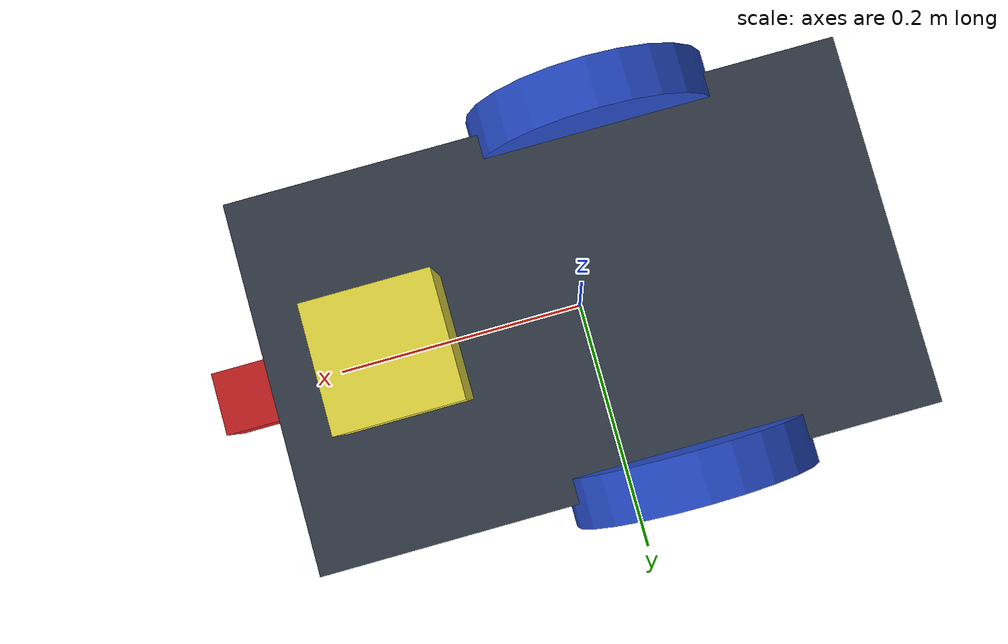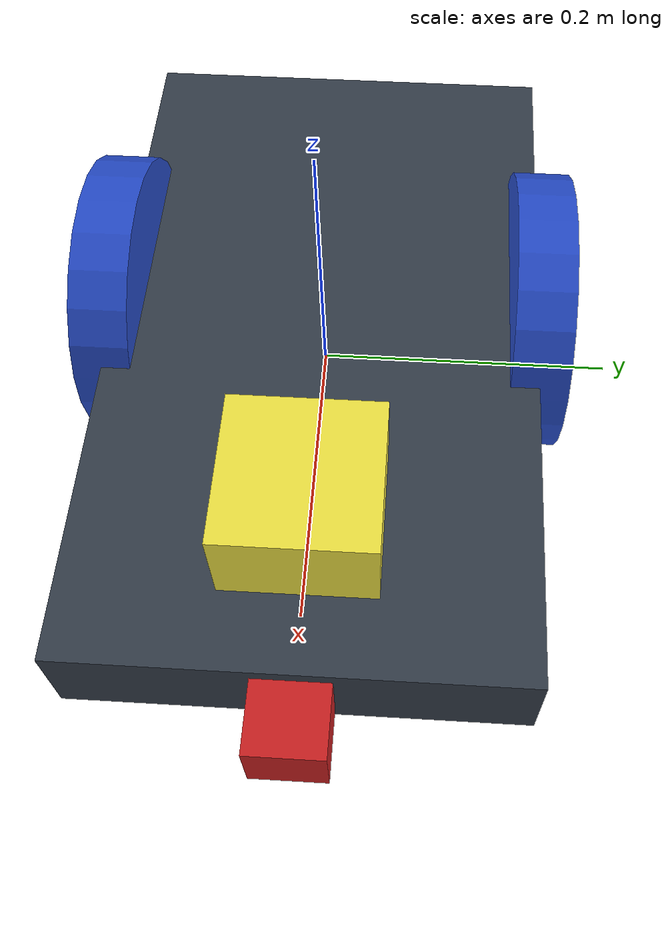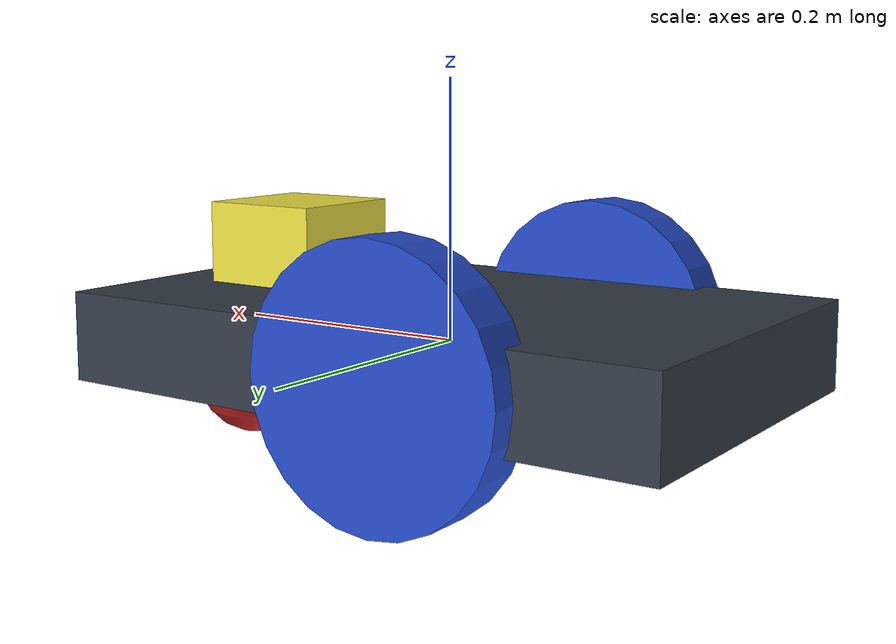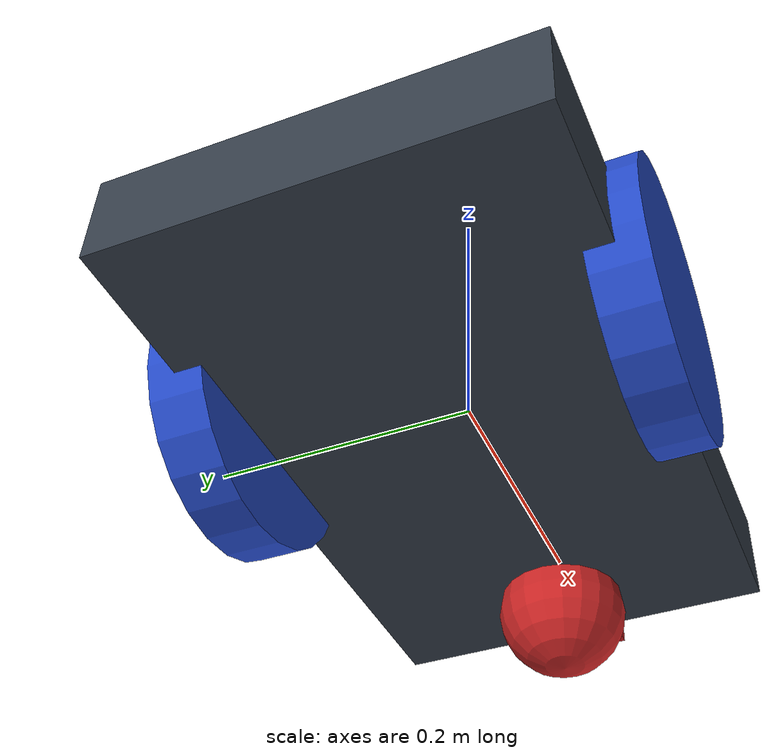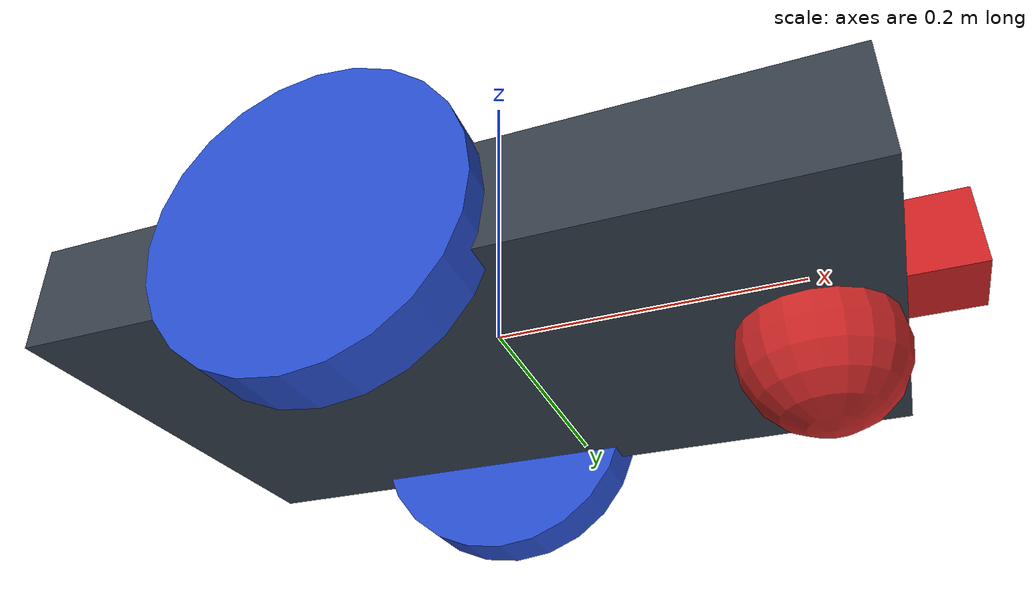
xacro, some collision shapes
<?xml version="1.0"?>
<robot name="spcbot" xmlns:xacro="http://www.ros.org/wiki/xacro">
  <xacro:property name="camera_link" value="0.05" />
  <material name="black">
    <color rgba="0.0 0.0 0.0 1.0"/>
  </material>
  <material name="blue">
    <color rgba="0.203125 0.23828125 0.28515625 1.0"/>
  </material>
  <material name="green">
    <color rgba="0.0 0.8 0.0 1.0"/>
  </material>
  <material name="grey">
    <color rgba="0.2 0.2 0.2 1.0"/>
  </material>
  <material name="orange">
    <color rgba="1.0 0.423529411765 0.0392156862745 1.0"/>
  </material>
  <material name="brown">
    <color rgba="0.870588235294 0.811764705882 0.764705882353 1.0"/>
  </material>
  <material name="red">
    <color rgba="0.80078125 0.12890625 0.1328125 1.0"/>
  </material>
  <material name="white">
    <color rgba="1.0 1.0 1.0 1.0"/>
  </material>

    <gazebo reference="link_chassis">
    <material>Gazebo/Red</material>
  </gazebo>
  <gazebo reference="link_left_wheel">
    <material>Gazebo/Blue</material>
  </gazebo>
  <gazebo reference="link_right_wheel">
    <material>Gazebo/Blue</material>
  </gazebo>

  <gazebo>
    <plugin filename="libgazebo_ros_diff_drive.so" name="differential_drive_controller">
      <alwaysOn>true</alwaysOn>
      <updateRate>20</updateRate>
      <leftJoint>joint_left_wheel</leftJoint>
      <rightJoint>joint_right_wheel</rightJoint>
      <wheelSeparation>0.4</wheelSeparation>
      <wheelDiameter>0.2</wheelDiameter>
      <torque>0.1</torque>
      <commandTopic>cmd_vel</commandTopic>
      <odometryTopic>odom</odometryTopic>
      <odometryFrame>odom</odometryFrame>
      <robotBaseFrame>link_chassis</robotBaseFrame>
    </plugin>
  </gazebo>

  <gazebo reference="hokuyo_link">
    <sensor type="ray" name="head_hokuyo_sensor">
      <pose>0 0 0 0 0 0</pose>
      <visualize>false</visualize>
      <update_rate>20</update_rate>
      <ray>
        <scan>
          <horizontal>
            <samples>720</samples>
            <resolution>1</resolution>
            <min_angle>-1.570796</min_angle>
            <max_angle>1.570796</max_angle>
          </horizontal>
        </scan>
        <range>
          <min>0.10</min>
          <max>30.0</max>
          <resolution>0.01</resolution>
        </range>
        <noise>
          <type>gaussian</type>
          <mean>0.0</mean>
          <stddev>0.01</stddev>
        </noise>
      </ray>
      <plugin name="gazebo_ros_head_hokuyo_controller" filename="libgazebo_ros_laser.so">
        <topicName>/spcbot/laser/scan</topicName>
        <frameName>hokuyo_link</frameName>
      </plugin>
    </sensor>
  </gazebo>

   <link name="link_chassis">
    <!-- pose and inertial -->
    <pose>0 0 0.1 0 0 0</pose>
    <inertial>
      <mass value="15"/>
      <origin rpy="0 0 0" xyz="0 0 0.1"/>
      <inertia ixx="0.0395416666667" ixy="0" ixz="0" iyy="0.106208333333" iyz="0" izz="0.106208333333"/>
    </inertial>
    <!-- body -->
    <collision name="collision_chassis">
      <geometry>
        <box size="0.5 0.3 0.07"/>
      </geometry>
    </collision>
    <visual>
      <origin rpy="0 0 0" xyz="0 0 0"/>
      <geometry>
        <box size="0.5 0.3 0.07"/>
      </geometry>
      <material name="blue"/>
    </visual>
    <!-- caster front -->
    <collision name="caster_front_collision">
      <origin rpy=" 0 0 0" xyz="0.35 0 -0.05"/>
      <geometry>
        <sphere radius="0.05"/>
      </geometry>
      <surface>
        <friction>
          <ode>
            <mu>0</mu>
            <mu2>0</mu2>
            <slip1>1.0</slip1>
            <slip2>1.0</slip2>
          </ode>
        </friction>
      </surface>
    </collision>
    <visual name="caster_front_visual">
      <origin rpy=" 0 0 0" xyz="0.2 0 -0.05"/>
      <geometry>
        <sphere radius="0.05"/>
      </geometry>
    </visual>
  </link>

  <link name="link_right_wheel">
    <inertial>
      <mass value="0.2"/>
      <origin rpy="0 1.5707 1.5707" xyz="0 0 0"/>
      <inertia ixx="0.000526666666667" ixy="0" ixz="0" iyy="0.000526666666667" iyz="0" izz="0.001"/>
    </inertial>
    <collision name="link_right_wheel_collision">
      <origin rpy="0 1.5707 1.5707" xyz="0 0 0"/>
      <geometry>
        <cylinder length="0.04" radius="0.1"/>
      </geometry>
    </collision>
    <visual name="link_right_wheel_visual">
      <origin rpy="0 1.5707 1.5707" xyz="0 0 0"/>
      <geometry>
        <cylinder length="0.04" radius="0.1"/>
      </geometry>
    </visual>
  </link>

  <joint name="joint_right_wheel" type="continuous">
    <origin rpy="0 0 0" xyz="-0.05 0.15 0"/>
    <child link="link_right_wheel"/>
    <parent link="link_chassis"/>
    <axis rpy="0 0 0" xyz="0 1 0"/>
    <limit effort="10000" velocity="1000"/>
    <joint_properties damping="1.0" friction="1.0"/>
  </joint>

  <link name="link_left_wheel">
    <inertial>
      <mass value="0.2"/>
      <origin rpy="0 1.5707 1.5707" xyz="0 0 0"/>
      <inertia ixx="0.000526666666667" ixy="0" ixz="0" iyy="0.000526666666667" iyz="0" izz="0.001"/>
    </inertial>
    <collision name="link_left_wheel_collision">
      <origin rpy="0 1.5707 1.5707" xyz="0 0 0"/>
      <geometry>
        <cylinder length="0.04" radius="0.1"/>
      </geometry>
    </collision>
    <visual name="link_left_wheel_visual">
      <origin rpy="0 1.5707 1.5707" xyz="0 0 0"/>
      <geometry>
        <cylinder length="0.04" radius="0.1"/>
      </geometry>
    </visual>
  </link>

  <joint name="joint_left_wheel" type="continuous">
    <origin rpy="0 0 0" xyz="-0.05 -0.15 0"/>
    <child link="link_left_wheel"/>
    <parent link="link_chassis"/>
    <axis rpy="0 0 0" xyz="0 1 0"/>
    <limit effort="10000" velocity="1000"/>
    <joint_properties damping="1.0" friction="1.0"/>
  </joint>
  <link name="hokuyo_link">
    <collision>
      <origin xyz="0 0 0" rpy="0 0 0"/>
      <geometry>
    <box size="0.1 0.1 0.1"/>
      </geometry>
    </collision>

    <visual>
      <origin xyz="0 0 0" rpy="0 0 0"/>
      <geometry>
        <mesh filename="package://spcbot_description/meshes/hokuyo.dae"/>
      </geometry>
    </visual>

    <inertial>
      <mass value="1e-5" />
      <origin xyz="0 0 0" rpy="0 0 0"/>
      <inertia ixx="1e-6" ixy="0" ixz="0" iyy="1e-6" iyz="0" izz="1e-6" />
    </inertial>
  </link>
  <joint name="hokuyo_joint" type="fixed">
    <axis xyz="0 1 0" />
    <origin xyz="0.15 0 0.05" rpy="0 0 0"/>
    <parent link="link_chassis"/>
    <child link="hokuyo_link"/>
  </joint>

  <!-- Camera -->
  <link name="camera_link">
    <collision>
      <origin xyz="0 0 0" rpy="0 0 0"/>
      <geometry>
    <box size="0.05 0.05 0.05"/>
      </geometry>
    </collision>

    <visual>
      <origin xyz="0 0 0" rpy="0 0 0"/>
      <geometry>
    <box size="0.05 0.05 0.05"/>
      </geometry>
      <material name="red"/>
    </visual>

    <inertial>
      <mass value="1e-5" />
      <origin xyz="0 0 0" rpy="0 0 0"/>
      <inertia ixx="1e-6" ixy="0" ixz="0" iyy="1e-6" iyz="0" izz="1e-6" />
    </inertial>
  </link>
  <!-- camera -->
  <gazebo reference="camera_link">
    <sensor type="camera" name="camera1">
      <update_rate>30.0</update_rate>
      <camera name="head">
        <horizontal_fov>1.3962634</horizontal_fov>
        <image>
          <width>800</width>
          <height>800</height>
          <format>R8G8B8</format>
        </image>
        <clip>
          <near>0.02</near>
          <far>300</far>
        </clip>
        <noise>
          <type>gaussian</type>
          <!-- Noise is sampled independently per pixel on each frame.
               That pixel's noise value is added to each of its color
               channels, which at that point lie in the range [0,1]. -->
          <mean>0.0</mean>
          <stddev>0.007</stddev>
        </noise>
      </camera>
      <plugin name="camera_controller" filename="libgazebo_ros_camera.so">
        <alwaysOn>true</alwaysOn>
        <updateRate>0.0</updateRate>
        <cameraName>spcbot/camera1</cameraName>
        <imageTopicName>image_raw</imageTopicName>
        <cameraInfoTopicName>camera_info</cameraInfoTopicName>
        <frameName>camera_link</frameName>
        <hackBaseline>0.07</hackBaseline>
        <distortionK1>0.0</distortionK1>
        <distortionK2>0.0</distortionK2>
        <distortionK3>0.0</distortionK3>
        <distortionT1>0.0</distortionT1>
        <distortionT2>0.0</distortionT2>
      </plugin>
    </sensor>
  </gazebo>
  <joint name="camera_joint" type="fixed">
    <axis xyz="0 1 0" />
    <origin xyz="0.27 0 0" rpy="0 0 0"/>
    <parent link="link_chassis"/>
    <child link="camera_link"/>
  </joint>

</robot>
